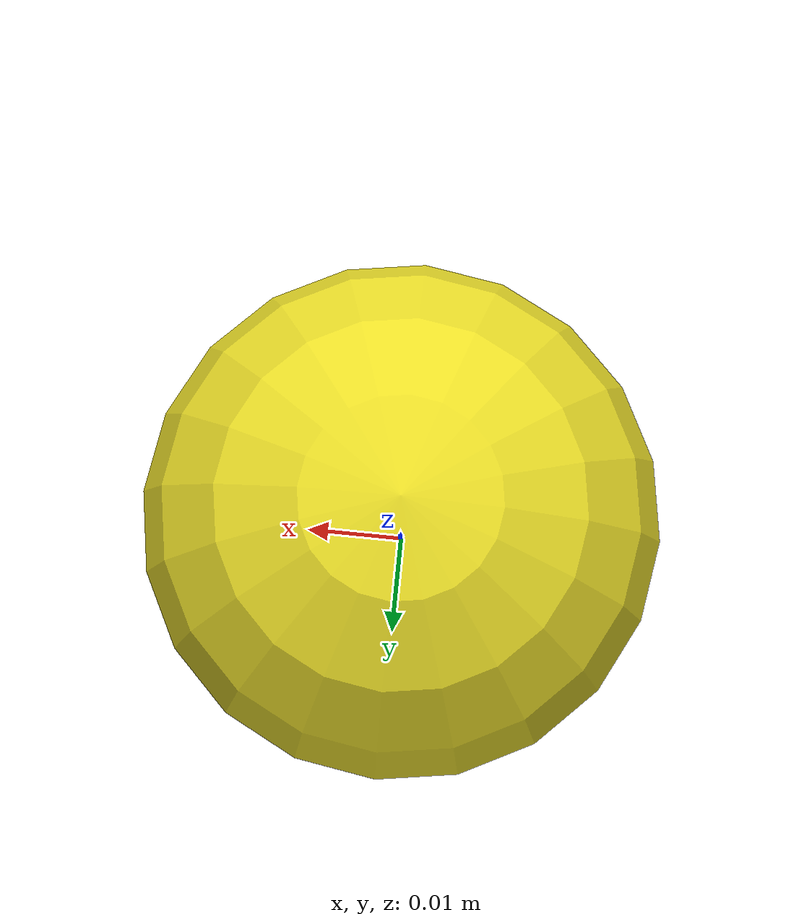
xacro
<?xml version="1.0"?>
<!-- Soccer Ball -->
<robot name="ball" xmlns:xacro="http://www.ros.org/wiki/xacro">
  <xacro:property name="PI" value="3.1415926535897931"/>
  <xacro:property name="mass" value="0.046"/>
  <xacro:property name="radius" value="0.021"/>

  <!-- Chassis -->
  <link name="ball">
    <collision name="collision">
      <origin xyz="0 0 ${radius}" rpy="0 0 0"/>
      <geometry>
        <sphere radius="${radius}"/>
      </geometry>
    </collision>
    <visual name="visual">
      <origin xyz="0 0 ${radius}" rpy="0 0 0"/>
      <geometry>
        <sphere radius="${radius}"/>
      </geometry>
    </visual>
    <inertial>
      <origin xyz="0 0 ${radius}" rpy="0 0 0"/>
      <mass value="${mass}"/>
      <inertia
        ixx="${2*mass*radius*radius/3}" ixy="0.0" ixz="0.0"
        iyy="${2*mass*radius*radius/3}" iyz="0.0"
        izz="${2*mass*radius*radius/3}"/>
    </inertial>
  </link>
  <gazebo reference="ball">
    <material>Gazebo/Yellow</material>
  </gazebo>

  <!-- Control -->
  <gazebo>
    <plugin name="soccer_ball" filename="libsoccer_ball.so">
      <namespace>ball</namespace>
      <friction>0.02</friction>
    </plugin>
  </gazebo>
</robot>
